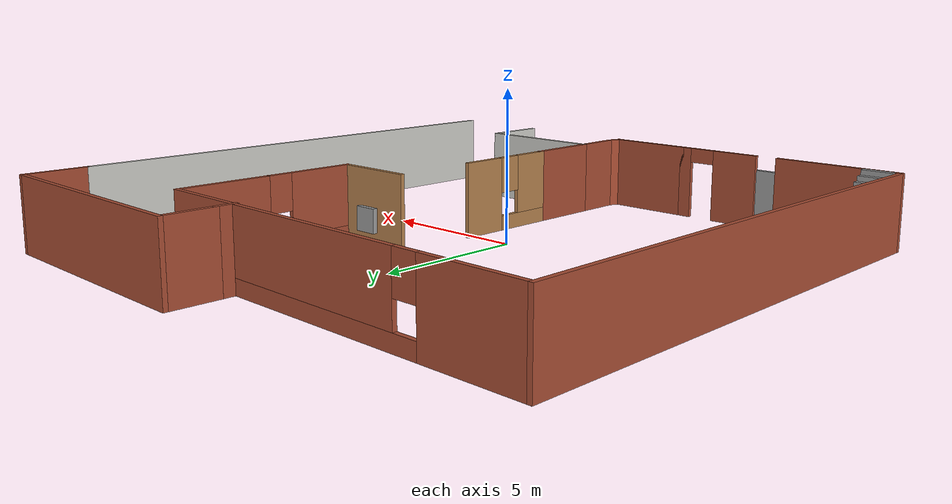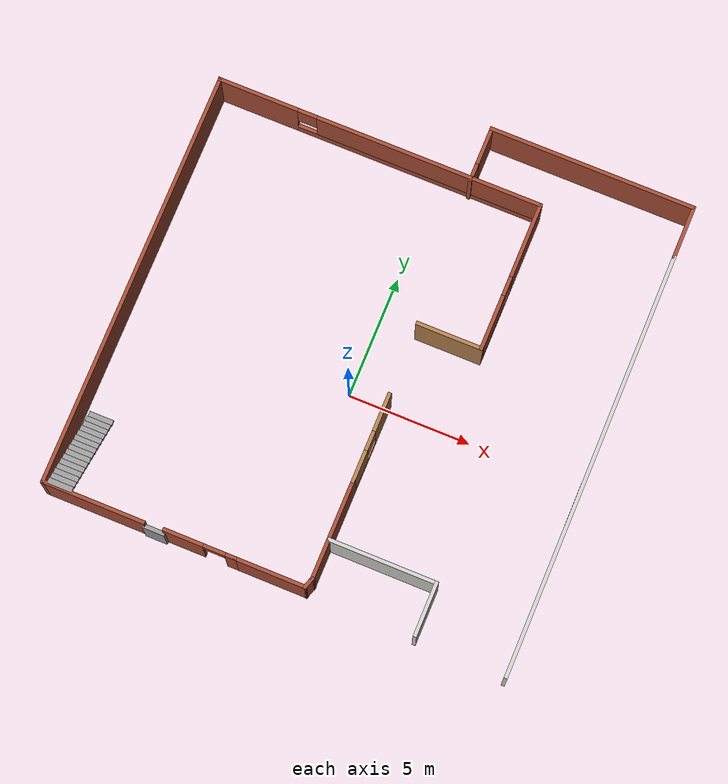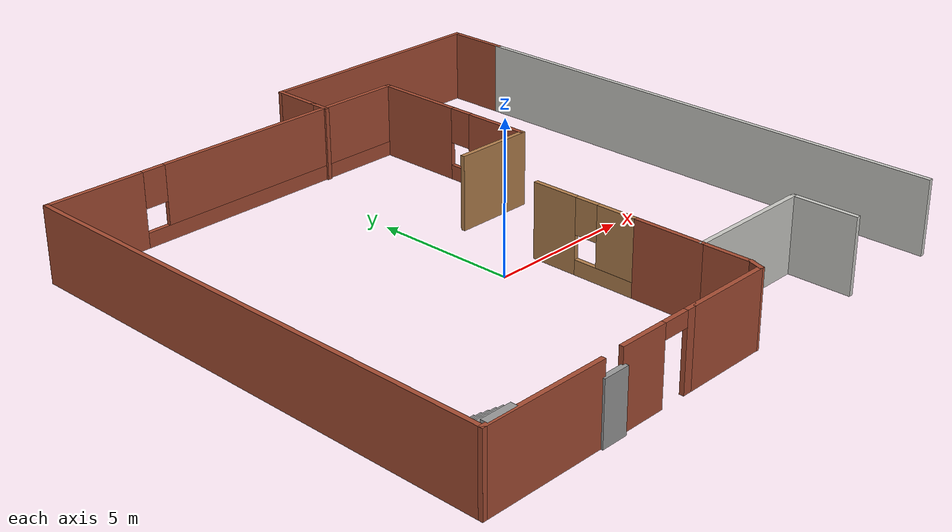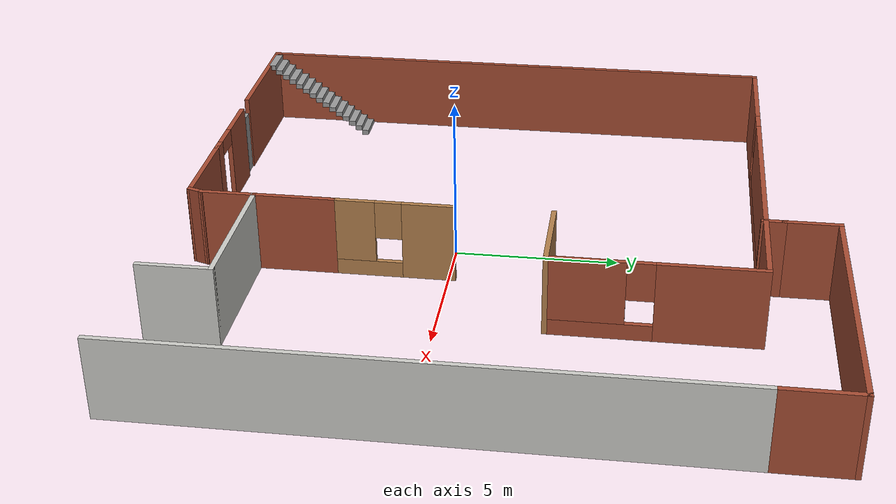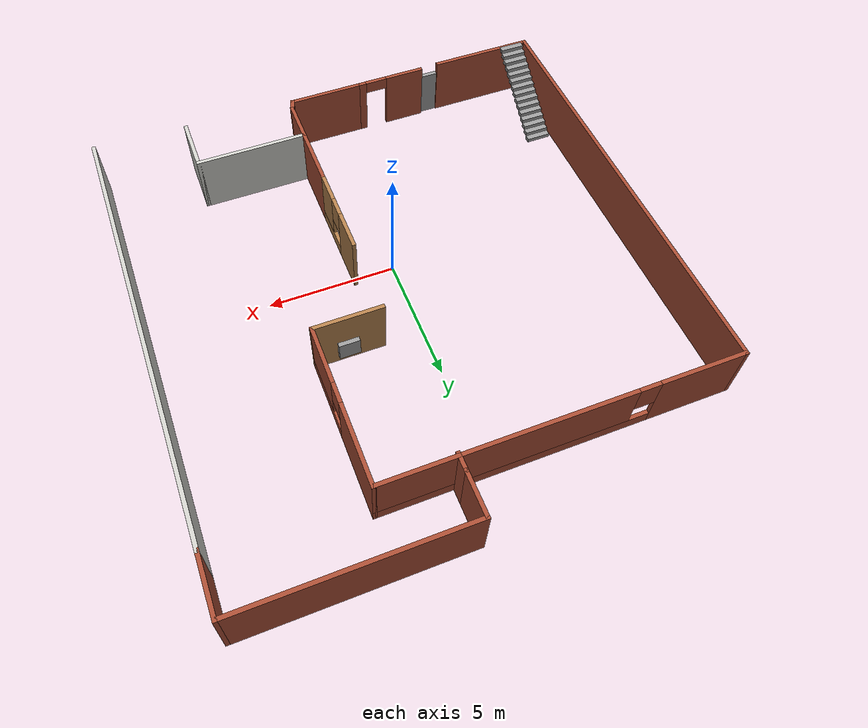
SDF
<?xml version='1.0'?>
<sdf version='1.7'>
  <model name='World1_gazebo'>
    <pose>0.217803 1.63189 0 0 -0 0</pose>
    <link name='Door_0'>
      <collision name='Door_0_Collision'>
        <geometry>
          <box>
            <size>0.9 0.17 2</size>
          </box>
        </geometry>
        <pose>0 0 1 0 -0 0</pose>
      </collision>
      <visual name='Door_0_Visual'>
        <pose>0 0 1 0 -0 0</pose>
        <geometry>
          <box>
            <size>0.9 0.17 2</size>
          </box>
        </geometry>
        <material>
          <script>
            <uri>file://media/materials/scripts/gazebo.material</uri>
            <name>Gazebo/Grey</name>
          </script>
        </material>
      </visual>
      <pose>-4.89109 -9.5593 0 0 -0 0</pose>
    </link>
    <link name='Stairs_0'>
      <visual name='Stairs_0_Visual_0'>
        <pose>-8.74415 -6.12162 0.083333 0 -0 0</pose>
        <geometry>
          <box>
            <size>1 0.233333 0.166667</size>
          </box>
        </geometry>
        <material>
          <script>
            <uri>file://media/materials/scripts/gazebo.material</uri>
            <name>Gazebo/Grey</name>
          </script>
          <ambient>1 1 1 1</ambient>
        </material>
        <meta>
          <layer>0</layer>
        </meta>
      </visual>
      <collision name='Stairs_0_Collision_0'>
        <geometry>
          <box>
            <size>1 0.233333 0.166667</size>
          </box>
        </geometry>
        <pose>-8.74415 -6.12162 0.083333 0 -0 0</pose>
      </collision>
      <visual name='Stairs_0_Visual_1'>
        <pose>-8.74415 -6.35496 0.25 0 -0 0</pose>
        <geometry>
          <box>
            <size>1 0.233333 0.166667</size>
          </box>
        </geometry>
        <material>
          <script>
            <uri>file://media/materials/scripts/gazebo.material</uri>
            <name>Gazebo/Grey</name>
          </script>
          <ambient>1 1 1 1</ambient>
        </material>
        <meta>
          <layer>0</layer>
        </meta>
      </visual>
      <collision name='Stairs_0_Collision_1'>
        <geometry>
          <box>
            <size>1 0.233333 0.166667</size>
          </box>
        </geometry>
        <pose>-8.74415 -6.35496 0.25 0 -0 0</pose>
      </collision>
      <visual name='Stairs_0_Visual_2'>
        <pose>-8.74415 -6.58829 0.416667 0 -0 0</pose>
        <geometry>
          <box>
            <size>1 0.233333 0.166667</size>
          </box>
        </geometry>
        <material>
          <script>
            <uri>file://media/materials/scripts/gazebo.material</uri>
            <name>Gazebo/Grey</name>
          </script>
          <ambient>1 1 1 1</ambient>
        </material>
        <meta>
          <layer>0</layer>
        </meta>
      </visual>
      <collision name='Stairs_0_Collision_2'>
        <geometry>
          <box>
            <size>1 0.233333 0.166667</size>
          </box>
        </geometry>
        <pose>-8.74415 -6.58829 0.416667 0 -0 0</pose>
      </collision>
      <visual name='Stairs_0_Visual_3'>
        <pose>-8.74415 -6.82162 0.583333 0 -0 0</pose>
        <geometry>
          <box>
            <size>1 0.233333 0.166667</size>
          </box>
        </geometry>
        <material>
          <script>
            <uri>file://media/materials/scripts/gazebo.material</uri>
            <name>Gazebo/Grey</name>
          </script>
          <ambient>1 1 1 1</ambient>
        </material>
        <meta>
          <layer>0</layer>
        </meta>
      </visual>
      <collision name='Stairs_0_Collision_3'>
        <geometry>
          <box>
            <size>1 0.233333 0.166667</size>
          </box>
        </geometry>
        <pose>-8.74415 -6.82162 0.583333 0 -0 0</pose>
      </collision>
      <visual name='Stairs_0_Visual_4'>
        <pose>-8.74415 -7.05495 0.75 0 -0 0</pose>
        <geometry>
          <box>
            <size>1 0.233333 0.166667</size>
          </box>
        </geometry>
        <material>
          <script>
            <uri>file://media/materials/scripts/gazebo.material</uri>
            <name>Gazebo/Grey</name>
          </script>
          <ambient>1 1 1 1</ambient>
        </material>
        <meta>
          <layer>0</layer>
        </meta>
      </visual>
      <collision name='Stairs_0_Collision_4'>
        <geometry>
          <box>
            <size>1 0.233333 0.166667</size>
          </box>
        </geometry>
        <pose>-8.74415 -7.05495 0.75 0 -0 0</pose>
      </collision>
      <visual name='Stairs_0_Visual_5'>
        <pose>-8.74415 -7.28829 0.916667 0 -0 0</pose>
        <geometry>
          <box>
            <size>1 0.233333 0.166667</size>
          </box>
        </geometry>
        <material>
          <script>
            <uri>file://media/materials/scripts/gazebo.material</uri>
            <name>Gazebo/Grey</name>
          </script>
          <ambient>1 1 1 1</ambient>
        </material>
        <meta>
          <layer>0</layer>
        </meta>
      </visual>
      <collision name='Stairs_0_Collision_5'>
        <geometry>
          <box>
            <size>1 0.233333 0.166667</size>
          </box>
        </geometry>
        <pose>-8.74415 -7.28829 0.916667 0 -0 0</pose>
      </collision>
      <visual name='Stairs_0_Visual_6'>
        <pose>-8.74415 -7.52162 1.08333 0 -0 0</pose>
        <geometry>
          <box>
            <size>1 0.233333 0.166667</size>
          </box>
        </geometry>
        <material>
          <script>
            <uri>file://media/materials/scripts/gazebo.material</uri>
            <name>Gazebo/Grey</name>
          </script>
          <ambient>1 1 1 1</ambient>
        </material>
        <meta>
          <layer>0</layer>
        </meta>
      </visual>
      <collision name='Stairs_0_Collision_6'>
        <geometry>
          <box>
            <size>1 0.233333 0.166667</size>
          </box>
        </geometry>
        <pose>-8.74415 -7.52162 1.08333 0 -0 0</pose>
      </collision>
      <visual name='Stairs_0_Visual_7'>
        <pose>-8.74415 -7.75495 1.25 0 -0 0</pose>
        <geometry>
          <box>
            <size>1 0.233333 0.166667</size>
          </box>
        </geometry>
        <material>
          <script>
            <uri>file://media/materials/scripts/gazebo.material</uri>
            <name>Gazebo/Grey</name>
          </script>
          <ambient>1 1 1 1</ambient>
        </material>
        <meta>
          <layer>0</layer>
        </meta>
      </visual>
      <collision name='Stairs_0_Collision_7'>
        <geometry>
          <box>
            <size>1 0.233333 0.166667</size>
          </box>
        </geometry>
        <pose>-8.74415 -7.75495 1.25 0 -0 0</pose>
      </collision>
      <visual name='Stairs_0_Visual_8'>
        <pose>-8.74415 -7.98829 1.41667 0 -0 0</pose>
        <geometry>
          <box>
            <size>1 0.233333 0.166667</size>
          </box>
        </geometry>
        <material>
          <script>
            <uri>file://media/materials/scripts/gazebo.material</uri>
            <name>Gazebo/Grey</name>
          </script>
          <ambient>1 1 1 1</ambient>
        </material>
        <meta>
          <layer>0</layer>
        </meta>
      </visual>
      <collision name='Stairs_0_Collision_8'>
        <geometry>
          <box>
            <size>1 0.233333 0.166667</size>
          </box>
        </geometry>
        <pose>-8.74415 -7.98829 1.41667 0 -0 0</pose>
      </collision>
      <visual name='Stairs_0_Visual_9'>
        <pose>-8.74415 -8.22162 1.58333 0 -0 0</pose>
        <geometry>
          <box>
            <size>1 0.233333 0.166667</size>
          </box>
        </geometry>
        <material>
          <script>
            <uri>file://media/materials/scripts/gazebo.material</uri>
            <name>Gazebo/Grey</name>
          </script>
          <ambient>1 1 1 1</ambient>
        </material>
        <meta>
          <layer>0</layer>
        </meta>
      </visual>
      <collision name='Stairs_0_Collision_9'>
        <geometry>
          <box>
            <size>1 0.233333 0.166667</size>
          </box>
        </geometry>
        <pose>-8.74415 -8.22162 1.58333 0 -0 0</pose>
      </collision>
      <visual name='Stairs_0_Visual_10'>
        <pose>-8.74415 -8.45495 1.75 0 -0 0</pose>
        <geometry>
          <box>
            <size>1 0.233333 0.166667</size>
          </box>
        </geometry>
        <material>
          <script>
            <uri>file://media/materials/scripts/gazebo.material</uri>
            <name>Gazebo/Grey</name>
          </script>
          <ambient>1 1 1 1</ambient>
        </material>
        <meta>
          <layer>0</layer>
        </meta>
      </visual>
      <collision name='Stairs_0_Collision_10'>
        <geometry>
          <box>
            <size>1 0.233333 0.166667</size>
          </box>
        </geometry>
        <pose>-8.74415 -8.45495 1.75 0 -0 0</pose>
      </collision>
      <visual name='Stairs_0_Visual_11'>
        <pose>-8.74415 -8.68829 1.91667 0 -0 0</pose>
        <geometry>
          <box>
            <size>1 0.233333 0.166667</size>
          </box>
        </geometry>
        <material>
          <script>
            <uri>file://media/materials/scripts/gazebo.material</uri>
            <name>Gazebo/Grey</name>
          </script>
          <ambient>1 1 1 1</ambient>
        </material>
        <meta>
          <layer>0</layer>
        </meta>
      </visual>
      <collision name='Stairs_0_Collision_11'>
        <geometry>
          <box>
            <size>1 0.233333 0.166667</size>
          </box>
        </geometry>
        <pose>-8.74415 -8.68829 1.91667 0 -0 0</pose>
      </collision>
      <visual name='Stairs_0_Visual_12'>
        <pose>-8.74415 -8.92162 2.08333 0 -0 0</pose>
        <geometry>
          <box>
            <size>1 0.233333 0.166667</size>
          </box>
        </geometry>
        <material>
          <script>
            <uri>file://media/materials/scripts/gazebo.material</uri>
            <name>Gazebo/Grey</name>
          </script>
          <ambient>1 1 1 1</ambient>
        </material>
        <meta>
          <layer>0</layer>
        </meta>
      </visual>
      <collision name='Stairs_0_Collision_12'>
        <geometry>
          <box>
            <size>1 0.233333 0.166667</size>
          </box>
        </geometry>
        <pose>-8.74415 -8.92162 2.08333 0 -0 0</pose>
      </collision>
      <visual name='Stairs_0_Visual_13'>
        <pose>-8.74415 -9.15495 2.25 0 -0 0</pose>
        <geometry>
          <box>
            <size>1 0.233333 0.166667</size>
          </box>
        </geometry>
        <material>
          <script>
            <uri>file://media/materials/scripts/gazebo.material</uri>
            <name>Gazebo/Grey</name>
          </script>
          <ambient>1 1 1 1</ambient>
        </material>
        <meta>
          <layer>0</layer>
        </meta>
      </visual>
      <collision name='Stairs_0_Collision_13'>
        <geometry>
          <box>
            <size>1 0.233333 0.166667</size>
          </box>
        </geometry>
        <pose>-8.74415 -9.15495 2.25 0 -0 0</pose>
      </collision>
      <visual name='Stairs_0_Visual_14'>
        <pose>-8.74415 -9.38829 2.41667 0 -0 0</pose>
        <geometry>
          <box>
            <size>1 0.233333 0.166667</size>
          </box>
        </geometry>
        <material>
          <script>
            <uri>file://media/materials/scripts/gazebo.material</uri>
            <name>Gazebo/Grey</name>
          </script>
          <ambient>1 1 1 1</ambient>
        </material>
        <meta>
          <layer>0</layer>
        </meta>
      </visual>
      <collision name='Stairs_0_Collision_14'>
        <geometry>
          <box>
            <size>1 0.233333 0.166667</size>
          </box>
        </geometry>
        <pose>-8.74415 -9.38829 2.41667 0 -0 0</pose>
      </collision>
    </link>
    <link name='Wall_10'>
      <collision name='Wall_10_Collision'>
        <geometry>
          <box>
            <size>4.25 0.15 2.5</size>
          </box>
        </geometry>
        <pose>0 0 1.25 0 -0 0</pose>
      </collision>
      <visual name='Wall_10_Visual'>
        <pose>0 0 1.25 0 -0 0</pose>
        <geometry>
          <box>
            <size>4.25 0.15 2.5</size>
          </box>
        </geometry>
        <material>
          <script>
            <uri>file://media/materials/scripts/gazebo.material</uri>
            <name>Gazebo/Bricks</name>
          </script>
          <ambient>0 0 0 1</ambient>
        </material>
        <meta>
          <layer>0</layer>
        </meta>
      </visual>
      <pose>-7.36911 -9.5058 0 0 -0 3.14159</pose>
    </link>
    <link name='Wall_11'>
      <collision name='Wall_11_Collision'>
        <geometry>
          <box>
            <size>17.25 0.15 2.5</size>
          </box>
        </geometry>
        <pose>0 0 1.25 0 -0 0</pose>
      </collision>
      <visual name='Wall_11_Visual'>
        <pose>0 0 1.25 0 -0 0</pose>
        <geometry>
          <box>
            <size>17.25 0.15 2.5</size>
          </box>
        </geometry>
        <material>
          <script>
            <uri>file://media/materials/scripts/gazebo.material</uri>
            <name>Gazebo/Bricks</name>
          </script>
          <ambient>0.435294 0.796078 0.67451 1</ambient>
        </material>
        <meta>
          <layer>0</layer>
        </meta>
      </visual>
      <pose>-9.41911 -0.955797 0 0 -0 1.5708</pose>
    </link>
    <link name='Wall_12'>
      <pose>-2.74411 7.5942 0 0 -0 0</pose>
      <visual name='Wall_12_Visual_0'>
        <pose>-5.07651 0 1.25 0 -0 0</pose>
        <geometry>
          <box>
            <size>3.34698 0.15 2.5</size>
          </box>
        </geometry>
        <material>
          <script>
            <uri>file://media/materials/scripts/gazebo.material</uri>
            <name>Gazebo/Bricks</name>
          </script>
          <ambient>0.929412 0.2 0.231373 1</ambient>
        </material>
        <meta>
          <layer>0</layer>
        </meta>
      </visual>
      <collision name='Wall_12_Collision_0'>
        <geometry>
          <box>
            <size>3.34698 0.15 2.5</size>
          </box>
        </geometry>
        <pose>-5.07651 0 1.25 0 -0 0</pose>
      </collision>
      <visual name='Wall_12_Visual_1'>
        <pose>1.67349 0 0.25 0 -0 0</pose>
        <geometry>
          <box>
            <size>10.153 0.15 0.5</size>
          </box>
        </geometry>
        <material>
          <script>
            <uri>file://media/materials/scripts/gazebo.material</uri>
            <name>Gazebo/Bricks</name>
          </script>
          <ambient>0.929412 0.2 0.231373 1</ambient>
        </material>
        <meta>
          <layer>0</layer>
        </meta>
      </visual>
      <collision name='Wall_12_Collision_1'>
        <geometry>
          <box>
            <size>10.153 0.15 0.5</size>
          </box>
        </geometry>
        <pose>1.67349 0 0.25 0 -0 0</pose>
      </collision>
      <visual name='Wall_12_Visual_2'>
        <pose>2.07349 0 1.5 0 -0 0</pose>
        <geometry>
          <box>
            <size>9.35302 0.15 2</size>
          </box>
        </geometry>
        <material>
          <script>
            <uri>file://media/materials/scripts/gazebo.material</uri>
            <name>Gazebo/Bricks</name>
          </script>
          <ambient>0.929412 0.2 0.231373 1</ambient>
        </material>
        <meta>
          <layer>0</layer>
        </meta>
      </visual>
      <collision name='Wall_12_Collision_2'>
        <geometry>
          <box>
            <size>9.35302 0.15 2</size>
          </box>
        </geometry>
        <pose>2.07349 0 1.5 0 -0 0</pose>
      </collision>
      <visual name='Wall_12_Visual_3'>
        <pose>-3.00302 0 1.9 0 -0 0</pose>
        <geometry>
          <box>
            <size>0.8 0.15 1.2</size>
          </box>
        </geometry>
        <material>
          <script>
            <uri>file://media/materials/scripts/gazebo.material</uri>
            <name>Gazebo/Bricks</name>
          </script>
          <ambient>0.929412 0.2 0.231373 1</ambient>
        </material>
        <meta>
          <layer>0</layer>
        </meta>
      </visual>
      <collision name='Wall_12_Collision_3'>
        <geometry>
          <box>
            <size>0.8 0.15 1.2</size>
          </box>
        </geometry>
        <pose>-3.00302 0 1.9 0 -0 0</pose>
      </collision>
    </link>
    <link name='Wall_13'>
      <pose>3.93089 4.5442 0 0 -0 -1.5708</pose>
      <visual name='Wall_13_Visual_0'>
        <pose>-1.55907 0 1.25 0 -0 0</pose>
        <geometry>
          <box>
            <size>3.13186 0.15 2.5</size>
          </box>
        </geometry>
        <material>
          <script>
            <uri>file://media/materials/scripts/gazebo.material</uri>
            <name>Gazebo/Bricks</name>
          </script>
          <ambient>0.929412 0.2 0.231373 1</ambient>
        </material>
        <meta>
          <layer>0</layer>
        </meta>
      </visual>
      <collision name='Wall_13_Collision_0'>
        <geometry>
          <box>
            <size>3.13186 0.15 2.5</size>
          </box>
        </geometry>
        <pose>-1.55907 0 1.25 0 -0 0</pose>
      </collision>
      <visual name='Wall_13_Visual_1'>
        <pose>1.56593 0 0.25 0 -0 0</pose>
        <geometry>
          <box>
            <size>3.11814 0.15 0.5</size>
          </box>
        </geometry>
        <material>
          <script>
            <uri>file://media/materials/scripts/gazebo.material</uri>
            <name>Gazebo/Bricks</name>
          </script>
          <ambient>0.929412 0.2 0.231373 1</ambient>
        </material>
        <meta>
          <layer>0</layer>
        </meta>
      </visual>
      <collision name='Wall_13_Collision_1'>
        <geometry>
          <box>
            <size>3.11814 0.15 0.5</size>
          </box>
        </geometry>
        <pose>1.56593 0 0.25 0 -0 0</pose>
      </collision>
      <visual name='Wall_13_Visual_2'>
        <pose>1.96593 0 1.5 0 -0 0</pose>
        <geometry>
          <box>
            <size>2.31814 0.15 2</size>
          </box>
        </geometry>
        <material>
          <script>
            <uri>file://media/materials/scripts/gazebo.material</uri>
            <name>Gazebo/Bricks</name>
          </script>
          <ambient>0.929412 0.2 0.231373 1</ambient>
        </material>
        <meta>
          <layer>0</layer>
        </meta>
      </visual>
      <collision name='Wall_13_Collision_2'>
        <geometry>
          <box>
            <size>2.31814 0.15 2</size>
          </box>
        </geometry>
        <pose>1.96593 0 1.5 0 -0 0</pose>
      </collision>
      <visual name='Wall_13_Visual_3'>
        <pose>0.406862 0 1.9 0 -0 0</pose>
        <geometry>
          <box>
            <size>0.8 0.15 1.2</size>
          </box>
        </geometry>
        <material>
          <script>
            <uri>file://media/materials/scripts/gazebo.material</uri>
            <name>Gazebo/Bricks</name>
          </script>
          <ambient>0.929412 0.2 0.231373 1</ambient>
        </material>
        <meta>
          <layer>0</layer>
        </meta>
      </visual>
      <collision name='Wall_13_Collision_3'>
        <geometry>
          <box>
            <size>0.8 0.15 1.2</size>
          </box>
        </geometry>
        <pose>0.406862 0 1.9 0 -0 0</pose>
      </collision>
    </link>
    <link name='Wall_14'>
      <collision name='Wall_14_Collision'>
        <geometry>
          <box>
            <size>2.75 0.15 2.5</size>
          </box>
        </geometry>
        <pose>0 0 1.25 0 -0 0</pose>
      </collision>
      <visual name='Wall_14_Visual'>
        <pose>0 0 1.25 0 -0 0</pose>
        <geometry>
          <box>
            <size>2.75 0.15 2.5</size>
          </box>
        </geometry>
        <material>
          <script>
            <uri>file://media/materials/scripts/gazebo.material</uri>
            <name>Gazebo/Wood</name>
          </script>
          <ambient>0.101961 0.372549 0.705882 1</ambient>
        </material>
        <meta>
          <layer>0</layer>
        </meta>
      </visual>
      <pose>2.63089 1.4942 0 0 -0 3.14159</pose>
    </link>
    <link name='Wall_16'>
      <pose>1.3687 -3.28042 0 0 -0 -1.5708</pose>
      <visual name='Wall_16_Visual_0'>
        <pose>-1.07445 0 1.25 0 -0 0</pose>
        <geometry>
          <box>
            <size>1.60109 0.15 2.5</size>
          </box>
        </geometry>
        <material>
          <script>
            <uri>file://media/materials/scripts/gazebo.material</uri>
            <name>Gazebo/Wood</name>
          </script>
          <ambient>0.101961 0.372549 0.705882 1</ambient>
        </material>
        <meta>
          <layer>0</layer>
        </meta>
      </visual>
      <collision name='Wall_16_Collision_0'>
        <geometry>
          <box>
            <size>1.60109 0.15 2.5</size>
          </box>
        </geometry>
        <pose>-1.07445 0 1.25 0 -0 0</pose>
      </collision>
      <visual name='Wall_16_Visual_1'>
        <pose>0.800545 0 0.25 0 -0 0</pose>
        <geometry>
          <box>
            <size>2.14891 0.15 0.5</size>
          </box>
        </geometry>
        <material>
          <script>
            <uri>file://media/materials/scripts/gazebo.material</uri>
            <name>Gazebo/Wood</name>
          </script>
          <ambient>0.101961 0.372549 0.705882 1</ambient>
        </material>
        <meta>
          <layer>0</layer>
        </meta>
      </visual>
      <collision name='Wall_16_Collision_1'>
        <geometry>
          <box>
            <size>2.14891 0.15 0.5</size>
          </box>
        </geometry>
        <pose>0.800545 0 0.25 0 -0 0</pose>
      </collision>
      <visual name='Wall_16_Visual_2'>
        <pose>1.20054 0 1.5 0 -0 0</pose>
        <geometry>
          <box>
            <size>1.34891 0.15 2</size>
          </box>
        </geometry>
        <material>
          <script>
            <uri>file://media/materials/scripts/gazebo.material</uri>
            <name>Gazebo/Wood</name>
          </script>
          <ambient>0.101961 0.372549 0.705882 1</ambient>
        </material>
        <meta>
          <layer>0</layer>
        </meta>
      </visual>
      <collision name='Wall_16_Collision_2'>
        <geometry>
          <box>
            <size>1.34891 0.15 2</size>
          </box>
        </geometry>
        <pose>1.20054 0 1.5 0 -0 0</pose>
      </collision>
      <visual name='Wall_16_Visual_3'>
        <pose>0.12609 0 1.9 0 -0 0</pose>
        <geometry>
          <box>
            <size>0.8 0.15 1.2</size>
          </box>
        </geometry>
        <material>
          <script>
            <uri>file://media/materials/scripts/gazebo.material</uri>
            <name>Gazebo/Wood</name>
          </script>
          <ambient>0.101961 0.372549 0.705882 1</ambient>
        </material>
        <meta>
          <layer>0</layer>
        </meta>
      </visual>
      <collision name='Wall_16_Collision_3'>
        <geometry>
          <box>
            <size>0.8 0.15 1.2</size>
          </box>
        </geometry>
        <pose>0.12609 0 1.9 0 -0 0</pose>
      </collision>
    </link>
    <link name='Wall_19'>
      <collision name='Wall_19_Collision'>
        <geometry>
          <box>
            <size>1.75 0.15 2.5</size>
          </box>
        </geometry>
        <pose>0 0 1.25 0 -0 0</pose>
      </collision>
      <visual name='Wall_19_Visual'>
        <pose>0 0 1.25 0 -0 0</pose>
        <geometry>
          <box>
            <size>1.75 0.15 2.5</size>
          </box>
        </geometry>
        <material>
          <script>
            <uri>file://media/materials/scripts/gazebo.material</uri>
            <name>Gazebo/Bricks</name>
          </script>
          <ambient>0 0 0 1</ambient>
        </material>
        <meta>
          <layer>0</layer>
        </meta>
      </visual>
      <pose>1.3687 -8.2727 0 0 -0 -1.5708</pose>
    </link>
    <link name='Wall_22'>
      <pose>-3.03391 -9.46116 0 0 -0 0</pose>
      <visual name='Wall_22_Visual_0'>
        <pose>-0.676111 0 1.25 0 -0 0</pose>
        <geometry>
          <box>
            <size>1.64778 0.15 2.5</size>
          </box>
        </geometry>
        <material>
          <script>
            <uri>file://media/materials/scripts/gazebo.material</uri>
            <name>Gazebo/Bricks</name>
          </script>
          <ambient>0 0 0 1</ambient>
        </material>
        <meta>
          <layer>0</layer>
        </meta>
      </visual>
      <collision name='Wall_22_Collision_0'>
        <geometry>
          <box>
            <size>1.64778 0.15 2.5</size>
          </box>
        </geometry>
        <pose>-0.676111 0 1.25 0 -0 0</pose>
      </collision>
      <visual name='Wall_22_Visual_1'>
        <pose>1.27389 0 1.25 0 -0 0</pose>
        <geometry>
          <box>
            <size>0.452221 0.15 2.5</size>
          </box>
        </geometry>
        <material>
          <script>
            <uri>file://media/materials/scripts/gazebo.material</uri>
            <name>Gazebo/Bricks</name>
          </script>
          <ambient>0 0 0 1</ambient>
        </material>
        <meta>
          <layer>0</layer>
        </meta>
      </visual>
      <collision name='Wall_22_Collision_1'>
        <geometry>
          <box>
            <size>0.452221 0.15 2.5</size>
          </box>
        </geometry>
        <pose>1.27389 0 1.25 0 -0 0</pose>
      </collision>
      <visual name='Wall_22_Visual_2'>
        <pose>0.597779 0 2.25 0 -0 0</pose>
        <geometry>
          <box>
            <size>0.9 0.15 0.5</size>
          </box>
        </geometry>
        <material>
          <script>
            <uri>file://media/materials/scripts/gazebo.material</uri>
            <name>Gazebo/Bricks</name>
          </script>
          <ambient>0 0 0 1</ambient>
        </material>
        <meta>
          <layer>0</layer>
        </meta>
      </visual>
      <collision name='Wall_22_Collision_2'>
        <geometry>
          <box>
            <size>0.9 0.15 0.5</size>
          </box>
        </geometry>
        <pose>0.597779 0 2.25 0 -0 0</pose>
      </collision>
    </link>
    <link name='Wall_24'>
      <collision name='Wall_24_Collision'>
        <geometry>
          <box>
            <size>3 0.15 2.5</size>
          </box>
        </geometry>
        <pose>0 0 1.25 0 -0 0</pose>
      </collision>
      <visual name='Wall_24_Visual'>
        <pose>0 0 1.25 0 -0 0</pose>
        <geometry>
          <box>
            <size>3 0.15 2.5</size>
          </box>
        </geometry>
        <material>
          <script>
            <uri>file://media/materials/scripts/gazebo.material</uri>
            <name>Gazebo/Bricks</name>
          </script>
          <ambient>0 0 0 1</ambient>
        </material>
        <meta>
          <layer>0</layer>
        </meta>
      </visual>
      <pose>-0.18391 -9.46116 0 0 -0 0</pose>
    </link>
    <link name='Wall_25'>
      <collision name='Wall_25_Collision'>
        <geometry>
          <box>
            <size>0.55888 0.15 2.5</size>
          </box>
        </geometry>
        <pose>0 0 1.25 0 -0 0</pose>
      </collision>
      <visual name='Wall_25_Visual'>
        <pose>0 0 1.25 0 -0 0</pose>
        <geometry>
          <box>
            <size>0.55888 0.15 2.5</size>
          </box>
        </geometry>
        <material>
          <script>
            <uri>file://media/materials/scripts/gazebo.material</uri>
            <name>Gazebo/Bricks</name>
          </script>
          <ambient>0 0 0 1</ambient>
        </material>
        <meta>
          <layer>0</layer>
        </meta>
      </visual>
      <pose>1.30489 -9.26693 0 0 -0 1.2534</pose>
    </link>
    <link name='Wall_27'>
      <collision name='Wall_27_Collision'>
        <geometry>
          <box>
            <size>2.54228 0.15 2.5</size>
          </box>
        </geometry>
        <pose>0 0 1.25 0 -0 0</pose>
      </collision>
      <visual name='Wall_27_Visual'>
        <pose>0 0 1.25 0 -0 0</pose>
        <geometry>
          <box>
            <size>2.54228 0.15 2.5</size>
          </box>
        </geometry>
        <material>
          <script>
            <uri>file://media/materials/scripts/gazebo.material</uri>
            <name>Gazebo/Bricks</name>
          </script>
          <ambient>1 1 1 1</ambient>
        </material>
        <meta>
          <layer>0</layer>
        </meta>
      </visual>
      <pose>1.3687 -6.27656 0 0 -0 -1.5708</pose>
    </link>
    <link name='Wall_28'>
      <collision name='Wall_28_Collision'>
        <geometry>
          <box>
            <size>4.5 0.15 2.5</size>
          </box>
        </geometry>
        <pose>0 0 1.25 0 -0 0</pose>
      </collision>
      <visual name='Wall_28_Visual'>
        <pose>0 0 1.25 0 -0 0</pose>
        <geometry>
          <box>
            <size>4.5 0.15 2.5</size>
          </box>
        </geometry>
        <material>
          <script>
            <uri>file://media/materials/scripts/gazebo.material</uri>
            <name>Gazebo/CeilingTiled</name>
          </script>
          <ambient>0.898039 0.647059 0.0392157 1</ambient>
        </material>
        <meta>
          <layer>0</layer>
        </meta>
      </visual>
      <pose>3.5437 -7.4727 0 0 -0 0</pose>
    </link>
    <link name='Wall_29'>
      <collision name='Wall_29_Collision'>
        <geometry>
          <box>
            <size>2.25 0.15 2.5</size>
          </box>
        </geometry>
        <pose>0 0 1.25 0 -0 0</pose>
      </collision>
      <visual name='Wall_29_Visual'>
        <pose>0 0 1.25 0 -0 0</pose>
        <geometry>
          <box>
            <size>2.25 0.15 2.5</size>
          </box>
        </geometry>
        <material>
          <script>
            <uri>file://media/materials/scripts/gazebo.material</uri>
            <name>Gazebo/CeilingTiled</name>
          </script>
          <ambient>0.898039 0.647059 0.0392157 1</ambient>
        </material>
        <meta>
          <layer>0</layer>
        </meta>
      </visual>
      <pose>5.7187 -8.5227 0 0 -0 -1.5708</pose>
    </link>
    <link name='Wall_31'>
      <collision name='Wall_31_Collision'>
        <geometry>
          <box>
            <size>17.5 0.15 2.5</size>
          </box>
        </geometry>
        <pose>0 0 1.25 0 -0 0</pose>
      </collision>
      <visual name='Wall_31_Visual'>
        <pose>0 0 1.25 0 -0 0</pose>
        <geometry>
          <box>
            <size>17.5 0.15 2.5</size>
          </box>
        </geometry>
        <material>
          <script>
            <uri>file://media/materials/scripts/gazebo.material</uri>
            <name>Gazebo/CeilingTiled</name>
          </script>
          <ambient>1 1 1 1</ambient>
        </material>
        <meta>
          <layer>0</layer>
        </meta>
      </visual>
      <pose>9.41911 -1.05 0 0 -0 1.5708</pose>
    </link>
    <link name='Wall_32'>
      <collision name='Wall_32_Collision'>
        <geometry>
          <box>
            <size>2.25 0.15 2.5</size>
          </box>
        </geometry>
        <pose>0 0 1.25 0 -0 0</pose>
      </collision>
      <visual name='Wall_32_Visual'>
        <pose>0 0 1.25 0 -0 0</pose>
        <geometry>
          <box>
            <size>2.25 0.15 2.5</size>
          </box>
        </geometry>
        <material>
          <script>
            <uri>file://media/materials/scripts/gazebo.material</uri>
            <name>Gazebo/Bricks</name>
          </script>
          <ambient>1 1 1 1</ambient>
        </material>
        <meta>
          <layer>0</layer>
        </meta>
      </visual>
      <pose>9.41911 8.675 0 0 -0 1.5708</pose>
    </link>
    <link name='Wall_33'>
      <collision name='Wall_33_Collision'>
        <geometry>
          <box>
            <size>8.5 0.15 2.5</size>
          </box>
        </geometry>
        <pose>0 0 1.25 0 -0 0</pose>
      </collision>
      <visual name='Wall_33_Visual'>
        <pose>0 0 1.25 0 -0 0</pose>
        <geometry>
          <box>
            <size>8.5 0.15 2.5</size>
          </box>
        </geometry>
        <material>
          <script>
            <uri>file://media/materials/scripts/gazebo.material</uri>
            <name>Gazebo/Bricks</name>
          </script>
          <ambient>0.752941 0.380392 0.796078 1</ambient>
        </material>
        <meta>
          <layer>0</layer>
        </meta>
      </visual>
      <pose>5.24411 9.725 0 0 -0 3.14159</pose>
    </link>
    <link name='Wall_34'>
      <collision name='Wall_34_Collision'>
        <geometry>
          <box>
            <size>1.75 0.15 2.5</size>
          </box>
        </geometry>
        <pose>0 0 1.25 0 -0 0</pose>
      </collision>
      <visual name='Wall_34_Visual'>
        <pose>0 0 1.25 0 -0 0</pose>
        <geometry>
          <box>
            <size>1.75 0.15 2.5</size>
          </box>
        </geometry>
        <material>
          <script>
            <uri>file://media/materials/scripts/gazebo.material</uri>
            <name>Gazebo/Bricks</name>
          </script>
          <ambient>1 1 1 1</ambient>
        </material>
        <meta>
          <layer>0</layer>
        </meta>
      </visual>
      <pose>1.06911 8.925 0 0 -0 -1.5708</pose>
    </link>
    <link name='Wall_35'>
      <collision name='Wall_35_Collision'>
        <geometry>
          <box>
            <size>0.75 0.15 2.5</size>
          </box>
        </geometry>
        <pose>0 0 1.25 0 -0 0</pose>
      </collision>
      <visual name='Wall_35_Visual'>
        <pose>0 0 1.25 0 -0 0</pose>
        <geometry>
          <box>
            <size>0.75 0.15 2.5</size>
          </box>
        </geometry>
        <material>
          <script>
            <uri>file://media/materials/scripts/gazebo.material</uri>
            <name>Gazebo/Bricks</name>
          </script>
          <ambient>1 1 1 1</ambient>
        </material>
        <meta>
          <layer>0</layer>
        </meta>
      </visual>
      <pose>1.06911 7.825 0 0 -0 -1.5708</pose>
    </link>
    <link name='Window_0'>
      <collision name='Window_0_Collision'>
        <geometry>
          <box>
            <size>0.8 0.17 0.8</size>
          </box>
        </geometry>
        <pose>0 0 0.4 0 -0 0</pose>
      </collision>
      <visual name='Window_0_Visual'>
        <pose>0 0 0.4 0 -0 0</pose>
        <geometry>
          <box>
            <size>0.8 0.17 0.8</size>
          </box>
        </geometry>
        <material>
          <script>
            <uri>file://media/materials/scripts/gazebo.material</uri>
            <name>Gazebo/Grey</name>
          </script>
        </material>
      </visual>
      <pose>2.70626 1.72973 0.5 0 -0 0</pose>
    </link>
    <static>1</static>
  </model>
</sdf>
